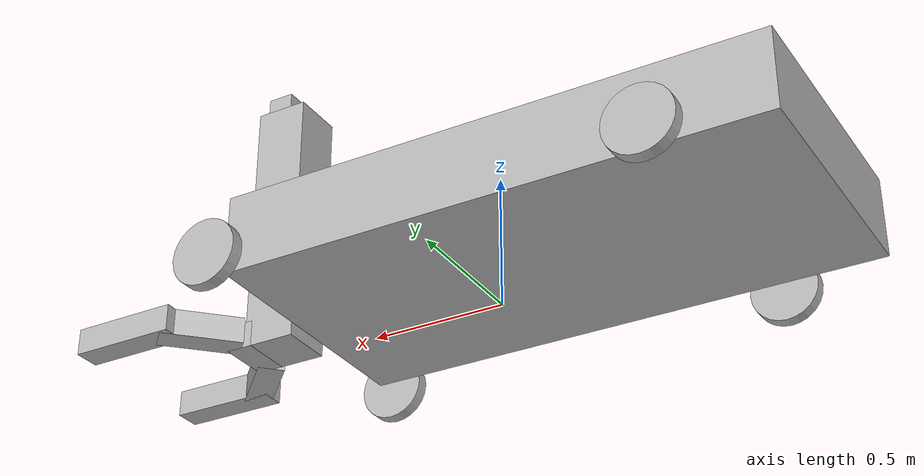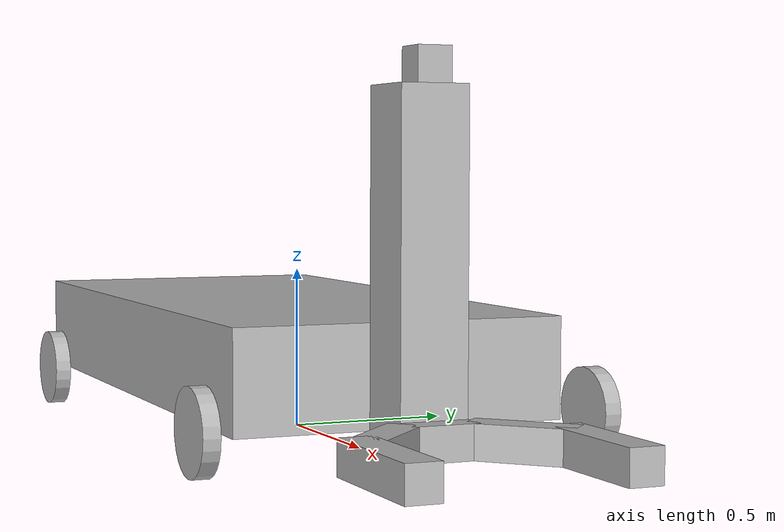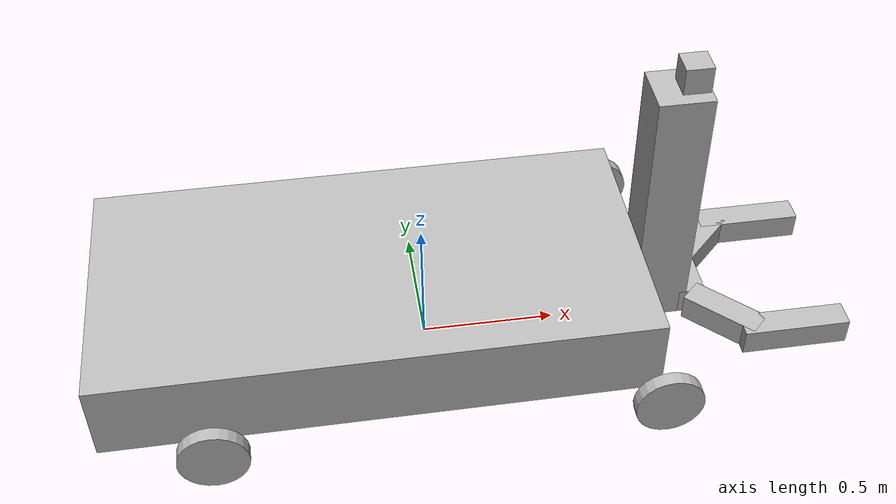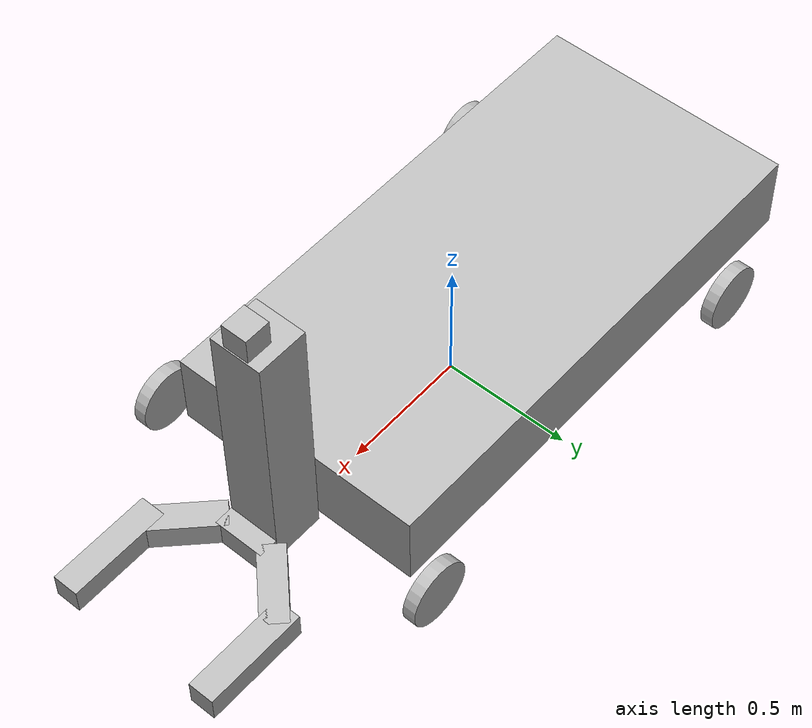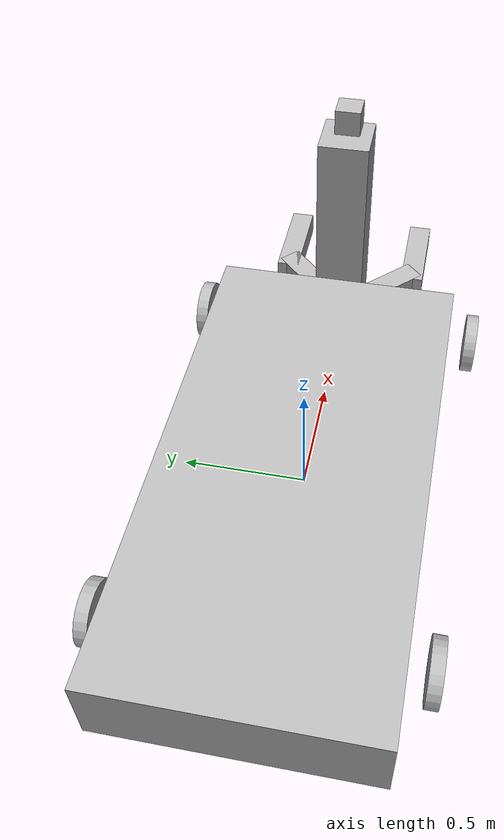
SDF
<sdf version='1.6'>
  <model name='the_robot'>
    <link name='the_robot__chassis'>
      <pose frame=''>0 0 0 0 -0 0</pose>
      <inertial>
        <pose frame=''>0.087498 0 0 0 -0 0</pose>
        <mass>1.2</mass>
        <inertia>
          <ixx>0.56</ixx>
          <ixy>0</ixy>
          <ixz>-0.112499</ixz>
          <iyy>1.27093</iyy>
          <iyz>0</iyz>
          <izz>0.310934</izz>
        </inertia>
      </inertial>
      <collision name='the_robot__chassis_fixed_joint_lump__the_robot__collision_collision'>
        <pose frame=''>-0.2 0 0.25 0 -0 0</pose>
        <geometry>
          <box>
            <size>2 1 0.3</size>
          </box>
        </geometry>
      </collision>
      <collision name='the_robot__chassis_fixed_joint_lump__the_robot__collision_collision_1'>
        <pose frame=''>0.89999 0 0.55 0 -0 0</pose>
        <geometry>
          <box>
            <size>0.2 0.2 1</size>
          </box>
        </geometry>
      </collision>
      <collision name='the_robot__chassis_fixed_joint_lump__the_robot__collision_collision_2'>
        <pose frame=''>0.94499 0 1.1 0 -0 0</pose>
        <geometry>
          <box>
            <size>0.1 0.1 0.1</size>
          </box>
        </geometry>
      </collision>
      <visual name='the_robot__chassis_fixed_joint_lump__the_robot__visual1_visual'>
        <pose frame=''>-0.2 0 0.25 0 -0 0</pose>
        <geometry>
          <box>
            <size>2 1 0.3</size>
          </box>
        </geometry>
      </visual>
      <visual name='the_robot__chassis_fixed_joint_lump__the_robot__visual4_visual_1'>
        <pose frame=''>0.89999 0 0.55 0 -0 0</pose>
        <geometry>
          <box>
            <size>0.2 0.2 1</size>
          </box>
        </geometry>
      </visual>
      <visual name='the_robot__chassis_fixed_joint_lump__the_robot__visual10_visual_2'>
        <pose frame=''>0.94499 0 1.1 0 -0 0</pose>
        <geometry>
          <box>
            <size>0.1 0.1 0.1</size>
          </box>
        </geometry>
      </visual>
      <velocity_decay/>
      <gravity>1</gravity>
      <velocity_decay/>
      <sensor name='camera1' type='camera'>
        <update_rate>30</update_rate>
        <camera name='head'>
          <horizontal_fov>1.39626</horizontal_fov>
          <image>
            <width>800</width>
            <height>800</height>
            <format>R8G8B8</format>
          </image>
          <clip>
            <near>0.02</near>
            <far>300</far>
          </clip>
          <noise>
            <type>gaussian</type>
            <mean>0</mean>
            <stddev>0.007</stddev>
          </noise>
        </camera>
        <plugin name='camera_controller' filename='libgazebo_ros_camera.so'>
          <alwaysOn>1</alwaysOn>
          <updateRate>0.0</updateRate>
          <cameraName>the_robot_camera/camera1</cameraName>
          <imageTopicName>image_raw</imageTopicName>
          <cameraInfoTopicName>camera_info</cameraInfoTopicName>
          <frameName>camera_link</frameName>
          <hackBaseline>0.07</hackBaseline>
          <distortionK1>0.0</distortionK1>
          <distortionK2>0.0</distortionK2>
          <distortionK3>0.0</distortionK3>
          <distortionT1>0.0</distortionT1>
          <distortionT2>0.0</distortionT2>
        </plugin>
        <pose frame=''>0.94499 0 1.1 0 -0 0</pose>
      </sensor>
    </link>
    <link name='the_robot__palm'>
      <pose frame=''>1.02499 0 0.1 0 -0 0</pose>
      <inertial>
        <pose frame=''>0 0 0 0 -0 0</pose>
        <mass>0.2</mass>
        <inertia>
          <ixx>0</ixx>
          <ixy>0</ixy>
          <ixz>0</ixz>
          <iyy>0</iyy>
          <iyz>0</iyz>
          <izz>0</izz>
        </inertia>
      </inertial>
      <collision name='the_robot__palm_fixed_joint_lump__the_robot__collision_collision'>
        <pose frame=''>0 0 0 0 -0 0</pose>
        <geometry>
          <box>
            <size>0.1 0.2 0.1</size>
          </box>
        </geometry>
      </collision>
      <visual name='the_robot__palm_fixed_joint_lump__the_robot__visual5_visual'>
        <pose frame=''>0 0 0 0 -0 0</pose>
        <geometry>
          <box>
            <size>0.1 0.2 0.1</size>
          </box>
        </geometry>
      </visual>
      <velocity_decay/>
      <gravity>1</gravity>
      <velocity_decay/>
      <sensor name='head_hokuyo_sensor' type='ray'>
        <visualize>1</visualize>
        <update_rate>40</update_rate>
        <ray>
          <scan>
            <horizontal>
              <samples>720</samples>
              <resolution>1</resolution>
              <min_angle>-1.5708</min_angle>
              <max_angle>1.5708</max_angle>
            </horizontal>
          </scan>
          <range>
            <min>0.1</min>
            <max>30</max>
            <resolution>0.01</resolution>
          </range>
          <noise>
            <type>gaussian</type>
            <mean>0</mean>
            <stddev>0.01</stddev>
          </noise>
        </ray>
        <plugin name='gazebo_ros_head_hokuyo_controller' filename='libgazebo_ros_laser.so'>
          <topicName>/the_robot/laser_scan</topicName>
          <frameName>hokuyo_link</frameName>
        </plugin>
        <pose frame=''>0 0 0.2 0 -0 0</pose>
      </sensor>
    </link>
    <joint name='the_robot__palm_riser' type='prismatic'>
      <child>the_robot__palm</child>
      <parent>the_robot__chassis</parent>
      <axis>
        <xyz>0 0 1</xyz>
        <limit>
          <lower>0</lower>
          <upper>0.9</upper>
          <effort>1000</effort>
          <velocity>1000</velocity>
        </limit>
        <dynamics>
          <spring_reference>0</spring_reference>
          <spring_stiffness>0</spring_stiffness>
        </dynamics>
        <use_parent_model_frame>1</use_parent_model_frame>
      </axis>
    </joint>
    <link name='the_robot__left_finger'>
      <pose frame=''>1.12499 0.2 0.1 0 0 -0.78539</pose>
      <inertial>
        <pose frame=''>0 0 0 0 -0 0</pose>
        <mass>0.1</mass>
        <inertia>
          <ixx>0</ixx>
          <ixy>0</ixy>
          <ixz>0</ixz>
          <iyy>0</iyy>
          <iyz>0</iyz>
          <izz>0</izz>
        </inertia>
      </inertial>
      <collision name='the_robot__left_finger_fixed_joint_lump__left_finger__collision_collision'>
        <pose frame=''>0 0 0 0 -0 0</pose>
        <geometry>
          <box>
            <size>0.1 0.3 0.1</size>
          </box>
        </geometry>
      </collision>
      <visual name='the_robot__left_finger_fixed_joint_lump__the_robot__visual6_visual'>
        <pose frame=''>0 0 0 0 -0 0</pose>
        <geometry>
          <box>
            <size>0.1 0.3 0.1</size>
          </box>
        </geometry>
      </visual>
      <velocity_decay/>
      <gravity>1</gravity>
      <velocity_decay/>
      <sensor name='my_contact_the_robot__left_finger' type='contact'>
        <plugin name='my_plugin' filename='libcontact.so'/>
        <always_on>1</always_on>
        <contact>
          <collision>the_robot__left_finger_fixed_joint_lump__left_finger__collision_collision</collision>
          <topic>__default_topic__</topic>
        </contact>
        <update_rate>5</update_rate>
      </sensor>
    </link>
    <joint name='the_robot__palm_left_finger' type='revolute'>
      <child>the_robot__left_finger</child>
      <parent>the_robot__palm</parent>
      <axis>
        <xyz>0 0 1</xyz>
        <limit>
          <lower>-1e+16</lower>
          <upper>1e+16</upper>
        </limit>
        <dynamics>
          <spring_reference>0</spring_reference>
          <spring_stiffness>0</spring_stiffness>
        </dynamics>
        <use_parent_model_frame>1</use_parent_model_frame>
      </axis>
    </joint>
    <link name='the_robot__left_finger_tip'>
      <pose frame=''>1.36098 0.300001 0.1 0 -0 1.5707</pose>
      <inertial>
        <pose frame=''>0 0 0 0 -0 0</pose>
        <mass>0.1</mass>
        <inertia>
          <ixx>0</ixx>
          <ixy>0</ixy>
          <ixz>0</ixz>
          <iyy>0</iyy>
          <iyz>0</iyz>
          <izz>0</izz>
        </inertia>
      </inertial>
      <collision name='the_robot__left_finger_tip_fixed_joint_lump__the_robot__collision_collision'>
        <pose frame=''>0 0 0 0 -0 0</pose>
        <geometry>
          <box>
            <size>0.1 0.4 0.1</size>
          </box>
        </geometry>
      </collision>
      <visual name='the_robot__left_finger_tip_fixed_joint_lump__the_robot__visual7_visual'>
        <pose frame=''>0 0 0 0 -0 0</pose>
        <geometry>
          <box>
            <size>0.1 0.4 0.1</size>
          </box>
        </geometry>
      </visual>
      <gravity>1</gravity>
      <velocity_decay/>
    </link>
    <joint name='the_robot__left_finger_tip_joint' type='revolute'>
      <child>the_robot__left_finger_tip</child>
      <parent>the_robot__left_finger</parent>
      <axis>
        <xyz>0 0 1</xyz>
        <limit>
          <lower>-0.8</lower>
          <upper>0.8</upper>
          <effort>1000</effort>
          <velocity>1000</velocity>
        </limit>
        <dynamics>
          <spring_reference>0</spring_reference>
          <spring_stiffness>0</spring_stiffness>
        </dynamics>
        <use_parent_model_frame>1</use_parent_model_frame>
      </axis>
    </joint>
    <link name='the_robot__right_finger'>
      <pose frame=''>1.12499 -0.2 0.1 0 -0 0.78539</pose>
      <inertial>
        <pose frame=''>0 0 0 0 -0 0</pose>
        <mass>0.1</mass>
        <inertia>
          <ixx>0</ixx>
          <ixy>0</ixy>
          <ixz>0</ixz>
          <iyy>0</iyy>
          <iyz>0</iyz>
          <izz>0</izz>
        </inertia>
      </inertial>
      <collision name='the_robot__right_finger_fixed_joint_lump__the_robot__collision_collision'>
        <pose frame=''>0 0 0 0 -0 0</pose>
        <geometry>
          <box>
            <size>0.1 0.3 0.1</size>
          </box>
        </geometry>
      </collision>
      <visual name='the_robot__right_finger_fixed_joint_lump__the_robot__visual8_visual'>
        <pose frame=''>0 0 0 0 -0 0</pose>
        <geometry>
          <box>
            <size>0.1 0.3 0.1</size>
          </box>
        </geometry>
      </visual>
      <gravity>1</gravity>
      <velocity_decay/>
    </link>
    <joint name='the_robot__palm_right_finger' type='revolute'>
      <child>the_robot__right_finger</child>
      <parent>the_robot__palm</parent>
      <axis>
        <xyz>0 0 1</xyz>
        <limit>
          <lower>-0.8</lower>
          <upper>0.8</upper>
          <effort>1000</effort>
          <velocity>1000</velocity>
        </limit>
        <dynamics>
          <spring_reference>0</spring_reference>
          <spring_stiffness>0</spring_stiffness>
        </dynamics>
        <use_parent_model_frame>1</use_parent_model_frame>
      </axis>
    </joint>
    <link name='the_robot__right_finger_tip'>
      <pose frame=''>1.36098 -0.300001 0.1 0 -0 1.5707</pose>
      <inertial>
        <pose frame=''>0 0 0 0 -0 0</pose>
        <mass>0.1</mass>
        <inertia>
          <ixx>0</ixx>
          <ixy>0</ixy>
          <ixz>0</ixz>
          <iyy>0</iyy>
          <iyz>0</iyz>
          <izz>0</izz>
        </inertia>
      </inertial>
      <collision name='the_robot__right_finger_tip_fixed_joint_lump__the_robot__collision_collision'>
        <pose frame=''>0 0 0 0 -0 0</pose>
        <geometry>
          <box>
            <size>0.1 0.4 0.1</size>
          </box>
        </geometry>
      </collision>
      <visual name='the_robot__right_finger_tip_fixed_joint_lump__the_robot__visual9_visual'>
        <pose frame=''>0 0 0 0 -0 0</pose>
        <geometry>
          <box>
            <size>0.1 0.4 0.1</size>
          </box>
        </geometry>
      </visual>
      <gravity>1</gravity>
      <velocity_decay/>
    </link>
    <joint name='the_robot__right_finger_tip_joint' type='revolute'>
      <child>the_robot__right_finger_tip</child>
      <parent>the_robot__right_finger</parent>
      <axis>
        <xyz>0 0 1</xyz>
        <limit>
          <lower>-0.8</lower>
          <upper>0.8</upper>
          <effort>1000</effort>
          <velocity>1000</velocity>
        </limit>
        <dynamics>
          <spring_reference>0</spring_reference>
          <spring_stiffness>0</spring_stiffness>
        </dynamics>
        <use_parent_model_frame>1</use_parent_model_frame>
      </axis>
    </joint>
    <link name='the_robot__left_wheel'>
      <pose frame=''>0.79999 0.56999 0.12499 0 1.5707 1.5707</pose>
      <inertial>
        <pose frame=''>0 0 0 0 -0 0</pose>
        <mass>0.5</mass>
        <inertia>
          <ixx>0</ixx>
          <ixy>0</ixy>
          <ixz>0</ixz>
          <iyy>0</iyy>
          <iyz>0</iyz>
          <izz>0</izz>
        </inertia>
      </inertial>
      <collision name='the_robot__left_wheel_fixed_joint_lump__the_robot__collision_collision'>
        <pose frame=''>0 0 0.03 0 -0 0</pose>
        <geometry>
          <cylinder>
            <length>0.05</length>
            <radius>0.125</radius>
          </cylinder>
        </geometry>
      </collision>
      <visual name='the_robot__left_wheel_fixed_joint_lump__the_robot__visual2_visual'>
        <pose frame=''>0 0 0.03 0 -0 0</pose>
        <geometry>
          <cylinder>
            <length>0.05</length>
            <radius>0.125</radius>
          </cylinder>
        </geometry>
      </visual>
    </link>
    <joint name='the_robot__left_wheel_hinge' type='revolute'>
      <child>the_robot__left_wheel</child>
      <parent>the_robot__chassis</parent>
      <axis>
        <xyz>6e-06 1 6e-06</xyz>
        <limit>
          <lower>-1e+16</lower>
          <upper>1e+16</upper>
        </limit>
        <dynamics>
          <spring_reference>0</spring_reference>
          <spring_stiffness>0</spring_stiffness>
        </dynamics>
        <use_parent_model_frame>1</use_parent_model_frame>
      </axis>
    </joint>
    <link name='the_robot__left_wheel_rear'>
      <pose frame=''>-0.79999 0.56999 0.12499 0 1.5707 1.5707</pose>
      <inertial>
        <pose frame=''>0 0 0 0 -0 0</pose>
        <mass>0.5</mass>
        <inertia>
          <ixx>0</ixx>
          <ixy>0</ixy>
          <ixz>0</ixz>
          <iyy>0</iyy>
          <iyz>0</iyz>
          <izz>0</izz>
        </inertia>
      </inertial>
      <collision name='the_robot__left_wheel_rear_fixed_joint_lump__the_robot__collision_collision'>
        <pose frame=''>0 0 0.03 0 -0 0</pose>
        <geometry>
          <cylinder>
            <length>0.05</length>
            <radius>0.125</radius>
          </cylinder>
        </geometry>
      </collision>
      <visual name='the_robot__left_wheel_rear_fixed_joint_lump__the_robot__visual22_visual'>
        <pose frame=''>0 0 0.03 0 -0 0</pose>
        <geometry>
          <cylinder>
            <length>0.05</length>
            <radius>0.125</radius>
          </cylinder>
        </geometry>
      </visual>
    </link>
    <joint name='the_robot__left_wheel_rear_hinge' type='revolute'>
      <child>the_robot__left_wheel_rear</child>
      <parent>the_robot__chassis</parent>
      <axis>
        <xyz>6e-06 1 6e-06</xyz>
        <limit>
          <lower>-1e+16</lower>
          <upper>1e+16</upper>
        </limit>
        <dynamics>
          <spring_reference>0</spring_reference>
          <spring_stiffness>0</spring_stiffness>
        </dynamics>
        <use_parent_model_frame>1</use_parent_model_frame>
      </axis>
    </joint>
    <link name='the_robot__right_wheel'>
      <pose frame=''>0.8 -0.56999 0.125 0 1.5707 1.5707</pose>
      <inertial>
        <pose frame=''>0 0 0 0 -0 0</pose>
        <mass>0.5</mass>
        <inertia>
          <ixx>0</ixx>
          <ixy>0</ixy>
          <ixz>0</ixz>
          <iyy>0</iyy>
          <iyz>0</iyz>
          <izz>0</izz>
        </inertia>
      </inertial>
      <collision name='the_robot__right_wheel_fixed_joint_lump__the_robot__collision_collision'>
        <pose frame=''>0 0 -0.03 0 -0 0</pose>
        <geometry>
          <cylinder>
            <length>0.05</length>
            <radius>0.125</radius>
          </cylinder>
        </geometry>
      </collision>
      <visual name='the_robot__right_wheel_fixed_joint_lump__the_robot__visual3_visual'>
        <pose frame=''>0 0 -0.03 0 -0 0</pose>
        <geometry>
          <cylinder>
            <length>0.05</length>
            <radius>0.125</radius>
          </cylinder>
        </geometry>
      </visual>
    </link>
    <joint name='the_robot__right_wheel_hinge' type='revolute'>
      <child>the_robot__right_wheel</child>
      <parent>the_robot__chassis</parent>
      <axis>
        <xyz>6e-06 1 6e-06</xyz>
        <limit>
          <lower>-1e+16</lower>
          <upper>1e+16</upper>
        </limit>
        <dynamics>
          <spring_reference>0</spring_reference>
          <spring_stiffness>0</spring_stiffness>
        </dynamics>
        <use_parent_model_frame>1</use_parent_model_frame>
      </axis>
      <physics>
        <ode>
          <limit>
            <cfm>0</cfm>
            <erp>0.2</erp>
          </limit>
        </ode>
      </physics>
    </joint>
    <link name='the_robot__right_wheel_rear'>
      <pose frame=''>-0.8 -0.56999 0.125 0 1.5707 1.5707</pose>
      <inertial>
        <pose frame=''>0 0 0 0 -0 0</pose>
        <mass>0.5</mass>
        <inertia>
          <ixx>0</ixx>
          <ixy>0</ixy>
          <ixz>0</ixz>
          <iyy>0</iyy>
          <iyz>0</iyz>
          <izz>0</izz>
        </inertia>
      </inertial>
      <collision name='the_robot__right_wheel_rear_fixed_joint_lump__the_robot__collision_collision'>
        <pose frame=''>0 0 -0.03 0 -0 0</pose>
        <geometry>
          <cylinder>
            <length>0.05</length>
            <radius>0.125</radius>
          </cylinder>
        </geometry>
      </collision>
      <visual name='the_robot__right_wheel_rear_fixed_joint_lump__the_robot__visual33_visual'>
        <pose frame=''>0 0 -0.03 0 -0 0</pose>
        <geometry>
          <cylinder>
            <length>0.05</length>
            <radius>0.125</radius>
          </cylinder>
        </geometry>
      </visual>
    </link>
    <joint name='the_robot__right_wheel_rear_hinge' type='revolute'>
      <child>the_robot__right_wheel_rear</child>
      <parent>the_robot__chassis</parent>
      <axis>
        <xyz>6e-06 1 6e-06</xyz>
        <limit>
          <lower>-1e+16</lower>
          <upper>1e+16</upper>
        </limit>
        <dynamics>
          <spring_reference>0</spring_reference>
          <spring_stiffness>0</spring_stiffness>
        </dynamics>
        <use_parent_model_frame>1</use_parent_model_frame>
      </axis>
    </joint>
    <plugin name='gazebo_ros_control' filename='libgazebo_ros_control.so'/>
    <static>0</static>
    <plugin name='skid_steer_drive_controller' filename='libgazebo_ros_skid_steer_drive.so'>
      <alwaysOn>1</alwaysOn>
      <updateRate>100</updateRate>
      <leftFrontJoint>the_robot__left_wheel_hinge</leftFrontJoint>
      <rightFrontJoint>the_robot__right_wheel_hinge</rightFrontJoint>
      <leftRearJoint>the_robot__left_wheel_rear_hinge</leftRearJoint>
      <rightRearJoint>the_robot__right_wheel_rear_hinge</rightRearJoint>
      <wheelSeparation>0.39</wheelSeparation>
      <wheelDiameter>0.15</wheelDiameter>
      <torque>5</torque>
      <commandTopic>/the_robot/cmd_vel</commandTopic>
      <odometryTopic>odom</odometryTopic>
      <odometryFrame>odom</odometryFrame>
      <robotBaseFrame>the_robot__chassis</robotBaseFrame>
      <publishWheelTF>1</publishWheelTF>
      <publishWheelJointState>1</publishWheelJointState>
      <rosDebugLevel>na</rosDebugLevel>
      <publishOdomTF>1</publishOdomTF>
      <wheelAcceleration>10</wheelAcceleration>
      <wheelTorque>5</wheelTorque>
      <odometrySource>world</odometrySource>
      <publishTf>1</publishTf>
    </plugin>
  </model>
</sdf>
